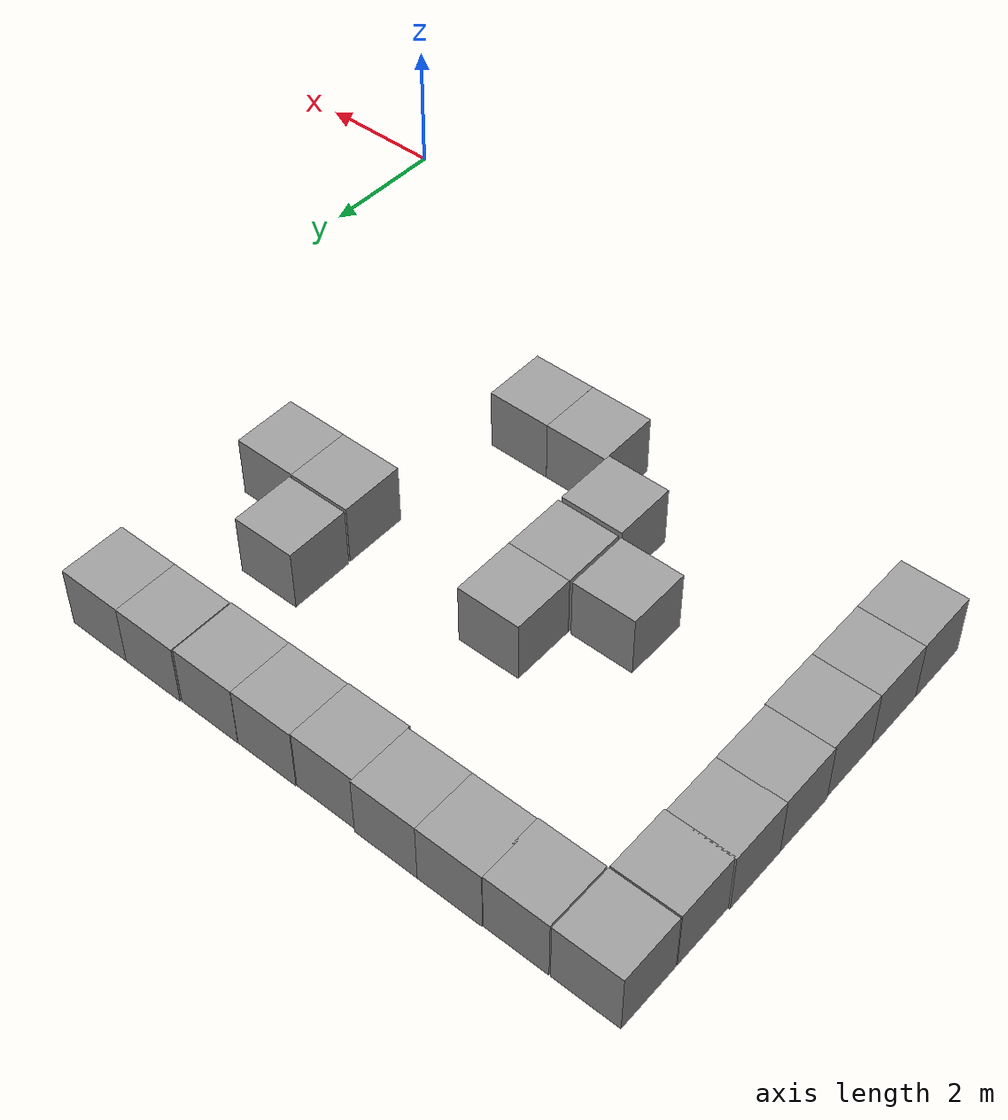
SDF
<sdf version="1.7">
 <model name="maze2.1">
  <link name="link_10">
   <inertial>
    <mass>1</mass>
    <inertia>
     <ixx>0.166667</ixx>
     <ixy>0</ixy>
     <ixz>0</ixz>
     <iyy>0.166667</iyy>
     <iyz>0</iyz>
     <izz>0.166667</izz>
    </inertia>
   </inertial>
   <pose>-11.2599 7.37778 0 0 -0 0</pose>
   <visual name="visual">
    <geometry><box><size>1 1 1</size></box></geometry>
    <material>
     <lighting>1</lighting>
     <script><uri>file://media/materials/scripts/gazebo.material</uri><name>Gazebo/Grey</name></script>
     <shader type="pixel"/>
    </material>
   </visual>
   <collision name="collision">
    <geometry><box><size>1 1 1</size></box></geometry>
    <surface>
     <friction>
      <ode><mu>1</mu><mu2>1</mu2><fdir1>0 0 0</fdir1><slip1>0</slip1><slip2>0</slip2></ode>
      <torsional>
       <coefficient>1</coefficient>
       <patch_radius>0</patch_radius>
       <surface_radius>0</surface_radius>
       <use_patch_radius>1</use_patch_radius>
       <ode><slip>0</slip></ode>
      </torsional>
     </friction>
     <bounce><restitution_coefficient>0</restitution_coefficient><threshold>1e+06</threshold></bounce>
     <contact>
      <collide_without_contact>0</collide_without_contact>
      <collide_without_contact_bitmask>1</collide_without_contact_bitmask>
      <collide_bitmask>1</collide_bitmask>
      <ode>
       <soft_cfm>0</soft_cfm>
       <soft_erp>0.2</soft_erp>
       <kp>1e+13</kp>
       <kd>1</kd>
       <max_vel>0.01</max_vel>
       <min_depth>0</min_depth>
      </ode>
      <bullet>
       <split_impulse>1</split_impulse>
       <split_impulse_penetration_threshold>-0.01</split_impulse_penetration_threshold>
       <soft_cfm>0</soft_cfm>
       <soft_erp>0.2</soft_erp>
       <kp>1e+13</kp>
       <kd>1</kd>
      </bullet>
     </contact>
    </surface>
   </collision>
  </link>
  <link name="link_1_clone_100">
   <inertial>
    <mass>1</mass>
    <inertia>
     <ixx>0.166667</ixx>
     <ixy>0</ixy>
     <ixz>0</ixz>
     <iyy>0.166667</iyy>
     <iyz>0</iyz>
     <izz>0.166667</izz>
    </inertia>
   </inertial>
   <pose>-7.24553 5.3741 0 0 -0 0</pose>
   <visual name="visual">
    <geometry><box><size>1 1 1</size></box></geometry>
    <material>
     <lighting>1</lighting>
     <script><uri>file://media/materials/scripts/gazebo.material</uri><name>Gazebo/Grey</name></script>
     <shader type="pixel"><normal_map>__default__</normal_map></shader>
     <ambient>0.3 0.3 0.3 1</ambient>
     <diffuse>0.7 0.7 0.7 1</diffuse>
     <specular>0.01 0.01 0.01 1</specular>
     <emissive>0 0 0 1</emissive>
    </material>
   </visual>
   <collision name="collision">
    <geometry><box><size>1 1 1</size></box></geometry>
    <surface>
     <friction>
      <ode><mu>1</mu><mu2>1</mu2><fdir1>0 0 0</fdir1><slip1>0</slip1><slip2>0</slip2></ode>
      <torsional>
       <coefficient>1</coefficient>
       <patch_radius>0</patch_radius>
       <surface_radius>0</surface_radius>
       <use_patch_radius>1</use_patch_radius>
       <ode><slip>0</slip></ode>
      </torsional>
     </friction>
     <bounce><restitution_coefficient>0</restitution_coefficient><threshold>1e+06</threshold></bounce>
     <contact>
      <collide_without_contact>0</collide_without_contact>
      <collide_without_contact_bitmask>1</collide_without_contact_bitmask>
      <collide_bitmask>1</collide_bitmask>
      <ode>
       <soft_cfm>0</soft_cfm>
       <soft_erp>0.2</soft_erp>
       <kp>1e+13</kp>
       <kd>1</kd>
       <max_vel>0.01</max_vel>
       <min_depth>0</min_depth>
      </ode>
      <bullet>
       <split_impulse>1</split_impulse>
       <split_impulse_penetration_threshold>-0.01</split_impulse_penetration_threshold>
       <soft_cfm>0</soft_cfm>
       <soft_erp>0.2</soft_erp>
       <kp>1e+13</kp>
       <kd>1</kd>
      </bullet>
     </contact>
    </surface>
   </collision>
  </link>
  <link name="link_1_clone_101">
   <inertial>
    <mass>1</mass>
    <inertia>
     <ixx>0.166667</ixx>
     <ixy>0</ixy>
     <ixz>0</ixz>
     <iyy>0.166667</iyy>
     <iyz>0</iyz>
     <izz>0.166667</izz>
    </inertia>
   </inertial>
   <pose>-7.24563 4.30755 0 0 -0 0</pose>
   <visual name="visual">
    <geometry><box><size>1 1 1</size></box></geometry>
    <material>
     <lighting>1</lighting>
     <script><uri>file://media/materials/scripts/gazebo.material</uri><name>Gazebo/Grey</name></script>
     <shader type="pixel"><normal_map>__default__</normal_map></shader>
     <ambient>0.3 0.3 0.3 1</ambient>
     <diffuse>0.7 0.7 0.7 1</diffuse>
     <specular>0.01 0.01 0.01 1</specular>
     <emissive>0 0 0 1</emissive>
    </material>
   </visual>
   <collision name="collision">
    <geometry><box><size>1 1 1</size></box></geometry>
    <surface>
     <friction>
      <ode><mu>1</mu><mu2>1</mu2><fdir1>0 0 0</fdir1><slip1>0</slip1><slip2>0</slip2></ode>
      <torsional>
       <coefficient>1</coefficient>
       <patch_radius>0</patch_radius>
       <surface_radius>0</surface_radius>
       <use_patch_radius>1</use_patch_radius>
       <ode><slip>0</slip></ode>
      </torsional>
     </friction>
     <bounce><restitution_coefficient>0</restitution_coefficient><threshold>1e+06</threshold></bounce>
     <contact>
      <collide_without_contact>0</collide_without_contact>
      <collide_without_contact_bitmask>1</collide_without_contact_bitmask>
      <collide_bitmask>1</collide_bitmask>
      <ode>
       <soft_cfm>0</soft_cfm>
       <soft_erp>0.2</soft_erp>
       <kp>1e+13</kp>
       <kd>1</kd>
       <max_vel>0.01</max_vel>
       <min_depth>0</min_depth>
      </ode>
      <bullet>
       <split_impulse>1</split_impulse>
       <split_impulse_penetration_threshold>-0.01</split_impulse_penetration_threshold>
       <soft_cfm>0</soft_cfm>
       <soft_erp>0.2</soft_erp>
       <kp>1e+13</kp>
       <kd>1</kd>
      </bullet>
     </contact>
    </surface>
   </collision>
  </link>
  <link name="link_1_clone_105">
   <inertial>
    <mass>1</mass>
    <inertia>
     <ixx>0.166667</ixx>
     <ixy>0</ixy>
     <ixz>0</ixz>
     <iyy>0.166667</iyy>
     <iyz>0</iyz>
     <izz>0.166667</izz>
    </inertia>
   </inertial>
   <pose>-6.24673 3.39615 0 0 -0 0</pose>
   <visual name="visual">
    <geometry><box><size>1 1 1</size></box></geometry>
    <material>
     <lighting>1</lighting>
     <script><uri>file://media/materials/scripts/gazebo.material</uri><name>Gazebo/Grey</name></script>
     <shader type="pixel"><normal_map>__default__</normal_map></shader>
     <ambient>0.3 0.3 0.3 1</ambient>
     <diffuse>0.7 0.7 0.7 1</diffuse>
     <specular>0.01 0.01 0.01 1</specular>
     <emissive>0 0 0 1</emissive>
    </material>
   </visual>
   <collision name="collision">
    <geometry><box><size>1 1 1</size></box></geometry>
    <surface>
     <friction>
      <ode><mu>1</mu><mu2>1</mu2><fdir1>0 0 0</fdir1><slip1>0</slip1><slip2>0</slip2></ode>
      <torsional>
       <coefficient>1</coefficient>
       <patch_radius>0</patch_radius>
       <surface_radius>0</surface_radius>
       <use_patch_radius>1</use_patch_radius>
       <ode><slip>0</slip></ode>
      </torsional>
     </friction>
     <bounce><restitution_coefficient>0</restitution_coefficient><threshold>1e+06</threshold></bounce>
     <contact>
      <collide_without_contact>0</collide_without_contact>
      <collide_without_contact_bitmask>1</collide_without_contact_bitmask>
      <collide_bitmask>1</collide_bitmask>
      <ode>
       <soft_cfm>0</soft_cfm>
       <soft_erp>0.2</soft_erp>
       <kp>1e+13</kp>
       <kd>1</kd>
       <max_vel>0.01</max_vel>
       <min_depth>0</min_depth>
      </ode>
      <bullet>
       <split_impulse>1</split_impulse>
       <split_impulse_penetration_threshold>-0.01</split_impulse_penetration_threshold>
       <soft_cfm>0</soft_cfm>
       <soft_erp>0.2</soft_erp>
       <kp>1e+13</kp>
       <kd>1</kd>
      </bullet>
     </contact>
    </surface>
   </collision>
  </link>
  <link name="link_1_clone_107">
   <inertial>
    <mass>1</mass>
    <inertia>
     <ixx>0.166667</ixx>
     <ixy>0</ixy>
     <ixz>0</ixz>
     <iyy>0.166667</iyy>
     <iyz>0</iyz>
     <izz>0.166667</izz>
    </inertia>
   </inertial>
   <pose>-5.24618 3.39625 0 0 -0 0</pose>
   <visual name="visual">
    <geometry><box><size>1 1 1</size></box></geometry>
    <material>
     <lighting>1</lighting>
     <script><uri>file://media/materials/scripts/gazebo.material</uri><name>Gazebo/Grey</name></script>
     <shader type="pixel"><normal_map>__default__</normal_map></shader>
     <ambient>0.3 0.3 0.3 1</ambient>
     <diffuse>0.7 0.7 0.7 1</diffuse>
     <specular>0.01 0.01 0.01 1</specular>
     <emissive>0 0 0 1</emissive>
    </material>
   </visual>
   <collision name="collision">
    <geometry><box><size>1 1 1</size></box></geometry>
    <surface>
     <friction>
      <ode><mu>1</mu><mu2>1</mu2><fdir1>0 0 0</fdir1><slip1>0</slip1><slip2>0</slip2></ode>
      <torsional>
       <coefficient>1</coefficient>
       <patch_radius>0</patch_radius>
       <surface_radius>0</surface_radius>
       <use_patch_radius>1</use_patch_radius>
       <ode><slip>0</slip></ode>
      </torsional>
     </friction>
     <bounce><restitution_coefficient>0</restitution_coefficient><threshold>1e+06</threshold></bounce>
     <contact>
      <collide_without_contact>0</collide_without_contact>
      <collide_without_contact_bitmask>1</collide_without_contact_bitmask>
      <collide_bitmask>1</collide_bitmask>
      <ode>
       <soft_cfm>0</soft_cfm>
       <soft_erp>0.2</soft_erp>
       <kp>1e+13</kp>
       <kd>1</kd>
       <max_vel>0.01</max_vel>
       <min_depth>0</min_depth>
      </ode>
      <bullet>
       <split_impulse>1</split_impulse>
       <split_impulse_penetration_threshold>-0.01</split_impulse_penetration_threshold>
       <soft_cfm>0</soft_cfm>
       <soft_erp>0.2</soft_erp>
       <kp>1e+13</kp>
       <kd>1</kd>
      </bullet>
     </contact>
    </surface>
   </collision>
  </link>
  <link name="link_1_clone_11">
   <inertial>
    <mass>1</mass>
    <inertia>
     <ixx>0.166667</ixx>
     <ixy>0</ixy>
     <ixz>0</ixz>
     <iyy>0.166667</iyy>
     <iyz>0</iyz>
     <izz>0.166667</izz>
    </inertia>
   </inertial>
   <pose>-3.24618 9.38526 0 0 -0 0</pose>
   <visual name="visual">
    <geometry><box><size>1 1 1</size></box></geometry>
    <material>
     <lighting>1</lighting>
     <script><uri>file://media/materials/scripts/gazebo.material</uri><name>Gazebo/Grey</name></script>
     <shader type="pixel"><normal_map>__default__</normal_map></shader>
     <ambient>0.3 0.3 0.3 1</ambient>
     <diffuse>0.7 0.7 0.7 1</diffuse>
     <specular>0.01 0.01 0.01 1</specular>
     <emissive>0 0 0 1</emissive>
    </material>
   </visual>
   <collision name="collision">
    <geometry><box><size>1 1 1</size></box></geometry>
    <surface>
     <friction>
      <ode><mu>1</mu><mu2>1</mu2><fdir1>0 0 0</fdir1><slip1>0</slip1><slip2>0</slip2></ode>
      <torsional>
       <coefficient>1</coefficient>
       <patch_radius>0</patch_radius>
       <surface_radius>0</surface_radius>
       <use_patch_radius>1</use_patch_radius>
       <ode><slip>0</slip></ode>
      </torsional>
     </friction>
     <bounce><restitution_coefficient>0</restitution_coefficient><threshold>1e+06</threshold></bounce>
     <contact>
      <collide_without_contact>0</collide_without_contact>
      <collide_without_contact_bitmask>1</collide_without_contact_bitmask>
      <collide_bitmask>1</collide_bitmask>
      <ode>
       <soft_cfm>0</soft_cfm>
       <soft_erp>0.2</soft_erp>
       <kp>1e+13</kp>
       <kd>1</kd>
       <max_vel>0.01</max_vel>
       <min_depth>0</min_depth>
      </ode>
      <bullet>
       <split_impulse>1</split_impulse>
       <split_impulse_penetration_threshold>-0.01</split_impulse_penetration_threshold>
       <soft_cfm>0</soft_cfm>
       <soft_erp>0.2</soft_erp>
       <kp>1e+13</kp>
       <kd>1</kd>
      </bullet>
     </contact>
    </surface>
   </collision>
  </link>
  <link name="link_1_clone_12">
   <inertial>
    <mass>1</mass>
    <inertia>
     <ixx>0.166667</ixx>
     <ixy>0</ixy>
     <ixz>0</ixz>
     <iyy>0.166667</iyy>
     <iyz>0</iyz>
     <izz>0.166667</izz>
    </inertia>
   </inertial>
   <pose>-4.24618 9.38526 0 0 -0 0</pose>
   <visual name="visual">
    <geometry><box><size>1 1 1</size></box></geometry>
    <material>
     <lighting>1</lighting>
     <script><uri>file://media/materials/scripts/gazebo.material</uri><name>Gazebo/Grey</name></script>
     <shader type="pixel"><normal_map>__default__</normal_map></shader>
     <ambient>0.3 0.3 0.3 1</ambient>
     <diffuse>0.7 0.7 0.7 1</diffuse>
     <specular>0.01 0.01 0.01 1</specular>
     <emissive>0 0 0 1</emissive>
    </material>
   </visual>
   <collision name="collision">
    <geometry><box><size>1 1 1</size></box></geometry>
    <surface>
     <friction>
      <ode><mu>1</mu><mu2>1</mu2><fdir1>0 0 0</fdir1><slip1>0</slip1><slip2>0</slip2></ode>
      <torsional>
       <coefficient>1</coefficient>
       <patch_radius>0</patch_radius>
       <surface_radius>0</surface_radius>
       <use_patch_radius>1</use_patch_radius>
       <ode><slip>0</slip></ode>
      </torsional>
     </friction>
     <bounce><restitution_coefficient>0</restitution_coefficient><threshold>1e+06</threshold></bounce>
     <contact>
      <collide_without_contact>0</collide_without_contact>
      <collide_without_contact_bitmask>1</collide_without_contact_bitmask>
      <collide_bitmask>1</collide_bitmask>
      <ode>
       <soft_cfm>0</soft_cfm>
       <soft_erp>0.2</soft_erp>
       <kp>1e+13</kp>
       <kd>1</kd>
       <max_vel>0.01</max_vel>
       <min_depth>0</min_depth>
      </ode>
      <bullet>
       <split_impulse>1</split_impulse>
       <split_impulse_penetration_threshold>-0.01</split_impulse_penetration_threshold>
       <soft_cfm>0</soft_cfm>
       <soft_erp>0.2</soft_erp>
       <kp>1e+13</kp>
       <kd>1</kd>
      </bullet>
     </contact>
    </surface>
   </collision>
  </link>
  <link name="link_1_clone_13">
   <inertial>
    <mass>1</mass>
    <inertia>
     <ixx>0.166667</ixx>
     <ixy>0</ixy>
     <ixz>0</ixz>
     <iyy>0.166667</iyy>
     <iyz>0</iyz>
     <izz>0.166667</izz>
    </inertia>
   </inertial>
   <pose>-5.26156 9.3701 0 0 -0 0</pose>
   <visual name="visual">
    <geometry><box><size>1 1 1</size></box></geometry>
    <material>
     <lighting>1</lighting>
     <script><uri>file://media/materials/scripts/gazebo.material</uri><name>Gazebo/Grey</name></script>
     <shader type="pixel"><normal_map>__default__</normal_map></shader>
     <ambient>0.3 0.3 0.3 1</ambient>
     <diffuse>0.7 0.7 0.7 1</diffuse>
     <specular>0.01 0.01 0.01 1</specular>
     <emissive>0 0 0 1</emissive>
    </material>
   </visual>
   <collision name="collision">
    <geometry><box><size>1 1 1</size></box></geometry>
    <surface>
     <friction>
      <ode><mu>1</mu><mu2>1</mu2><fdir1>0 0 0</fdir1><slip1>0</slip1><slip2>0</slip2></ode>
      <torsional>
       <coefficient>1</coefficient>
       <patch_radius>0</patch_radius>
       <surface_radius>0</surface_radius>
       <use_patch_radius>1</use_patch_radius>
       <ode><slip>0</slip></ode>
      </torsional>
     </friction>
     <bounce><restitution_coefficient>0</restitution_coefficient><threshold>1e+06</threshold></bounce>
     <contact>
      <collide_without_contact>0</collide_without_contact>
      <collide_without_contact_bitmask>1</collide_without_contact_bitmask>
      <collide_bitmask>1</collide_bitmask>
      <ode>
       <soft_cfm>0</soft_cfm>
       <soft_erp>0.2</soft_erp>
       <kp>1e+13</kp>
       <kd>1</kd>
       <max_vel>0.01</max_vel>
       <min_depth>0</min_depth>
      </ode>
      <bullet>
       <split_impulse>1</split_impulse>
       <split_impulse_penetration_threshold>-0.01</split_impulse_penetration_threshold>
       <soft_cfm>0</soft_cfm>
       <soft_erp>0.2</soft_erp>
       <kp>1e+13</kp>
       <kd>1</kd>
      </bullet>
     </contact>
    </surface>
   </collision>
  </link>
  <link name="link_1_clone_14">
   <inertial>
    <mass>1</mass>
    <inertia>
     <ixx>0.166667</ixx>
     <ixy>0</ixy>
     <ixz>0</ixz>
     <iyy>0.166667</iyy>
     <iyz>0</iyz>
     <izz>0.166667</izz>
    </inertia>
   </inertial>
   <pose>-6.25883 9.36603 0 0 -0 0</pose>
   <visual name="visual">
    <geometry><box><size>1 1 1</size></box></geometry>
    <material>
     <lighting>1</lighting>
     <script><uri>file://media/materials/scripts/gazebo.material</uri><name>Gazebo/Grey</name></script>
     <shader type="pixel"><normal_map>__default__</normal_map></shader>
     <ambient>0.3 0.3 0.3 1</ambient>
     <diffuse>0.7 0.7 0.7 1</diffuse>
     <specular>0.01 0.01 0.01 1</specular>
     <emissive>0 0 0 1</emissive>
    </material>
   </visual>
   <collision name="collision">
    <geometry><box><size>1 1 1</size></box></geometry>
    <surface>
     <friction>
      <ode><mu>1</mu><mu2>1</mu2><fdir1>0 0 0</fdir1><slip1>0</slip1><slip2>0</slip2></ode>
      <torsional>
       <coefficient>1</coefficient>
       <patch_radius>0</patch_radius>
       <surface_radius>0</surface_radius>
       <use_patch_radius>1</use_patch_radius>
       <ode><slip>0</slip></ode>
      </torsional>
     </friction>
     <bounce><restitution_coefficient>0</restitution_coefficient><threshold>1e+06</threshold></bounce>
     <contact>
      <collide_without_contact>0</collide_without_contact>
      <collide_without_contact_bitmask>1</collide_without_contact_bitmask>
      <collide_bitmask>1</collide_bitmask>
      <ode>
       <soft_cfm>0</soft_cfm>
       <soft_erp>0.2</soft_erp>
       <kp>1e+13</kp>
       <kd>1</kd>
       <max_vel>0.01</max_vel>
       <min_depth>0</min_depth>
      </ode>
      <bullet>
       <split_impulse>1</split_impulse>
       <split_impulse_penetration_threshold>-0.01</split_impulse_penetration_threshold>
       <soft_cfm>0</soft_cfm>
       <soft_erp>0.2</soft_erp>
       <kp>1e+13</kp>
       <kd>1</kd>
      </bullet>
     </contact>
    </surface>
   </collision>
  </link>
  <link name="link_1_clone_15">
   <inertial>
    <mass>1</mass>
    <inertia>
     <ixx>0.166667</ixx>
     <ixy>0</ixy>
     <ixz>0</ixz>
     <iyy>0.166667</iyy>
     <iyz>0</iyz>
     <izz>0.166667</izz>
    </inertia>
   </inertial>
   <pose>-7.24618 9.35465 0 0 -0 0</pose>
   <visual name="visual">
    <geometry><box><size>1 1 1</size></box></geometry>
    <material>
     <lighting>1</lighting>
     <script><uri>file://media/materials/scripts/gazebo.material</uri><name>Gazebo/Grey</name></script>
     <shader type="pixel"><normal_map>__default__</normal_map></shader>
     <ambient>0.3 0.3 0.3 1</ambient>
     <diffuse>0.7 0.7 0.7 1</diffuse>
     <specular>0.01 0.01 0.01 1</specular>
     <emissive>0 0 0 1</emissive>
    </material>
   </visual>
   <collision name="collision">
    <geometry><box><size>1 1 1</size></box></geometry>
    <surface>
     <friction>
      <ode><mu>1</mu><mu2>1</mu2><fdir1>0 0 0</fdir1><slip1>0</slip1><slip2>0</slip2></ode>
      <torsional>
       <coefficient>1</coefficient>
       <patch_radius>0</patch_radius>
       <surface_radius>0</surface_radius>
       <use_patch_radius>1</use_patch_radius>
       <ode><slip>0</slip></ode>
      </torsional>
     </friction>
     <bounce><restitution_coefficient>0</restitution_coefficient><threshold>1e+06</threshold></bounce>
     <contact>
      <collide_without_contact>0</collide_without_contact>
      <collide_without_contact_bitmask>1</collide_without_contact_bitmask>
      <collide_bitmask>1</collide_bitmask>
      <ode>
       <soft_cfm>0</soft_cfm>
       <soft_erp>0.2</soft_erp>
       <kp>1e+13</kp>
       <kd>1</kd>
       <max_vel>0.01</max_vel>
       <min_depth>0</min_depth>
      </ode>
      <bullet>
       <split_impulse>1</split_impulse>
       <split_impulse_penetration_threshold>-0.01</split_impulse_penetration_threshold>
       <soft_cfm>0</soft_cfm>
       <soft_erp>0.2</soft_erp>
       <kp>1e+13</kp>
       <kd>1</kd>
      </bullet>
     </contact>
    </surface>
   </collision>
  </link>
  <link name="link_1_clone_16">
   <inertial>
    <mass>1</mass>
    <inertia>
     <ixx>0.166667</ixx>
     <ixy>0</ixy>
     <ixz>0</ixz>
     <iyy>0.166667</iyy>
     <iyz>0</iyz>
     <izz>0.166667</izz>
    </inertia>
   </inertial>
   <pose>-8.24618 9.38541 0 0 -0 0</pose>
   <visual name="visual">
    <geometry><box><size>1 1 1</size></box></geometry>
    <material>
     <lighting>1</lighting>
     <script><uri>file://media/materials/scripts/gazebo.material</uri><name>Gazebo/Grey</name></script>
     <shader type="pixel"><normal_map>__default__</normal_map></shader>
     <ambient>0.3 0.3 0.3 1</ambient>
     <diffuse>0.7 0.7 0.7 1</diffuse>
     <specular>0.01 0.01 0.01 1</specular>
     <emissive>0 0 0 1</emissive>
    </material>
   </visual>
   <collision name="collision">
    <geometry><box><size>1 1 1</size></box></geometry>
    <surface>
     <friction>
      <ode><mu>1</mu><mu2>1</mu2><fdir1>0 0 0</fdir1><slip1>0</slip1><slip2>0</slip2></ode>
      <torsional>
       <coefficient>1</coefficient>
       <patch_radius>0</patch_radius>
       <surface_radius>0</surface_radius>
       <use_patch_radius>1</use_patch_radius>
       <ode><slip>0</slip></ode>
      </torsional>
     </friction>
     <bounce><restitution_coefficient>0</restitution_coefficient><threshold>1e+06</threshold></bounce>
     <contact>
      <collide_without_contact>0</collide_without_contact>
      <collide_without_contact_bitmask>1</collide_without_contact_bitmask>
      <collide_bitmask>1</collide_bitmask>
      <ode>
       <soft_cfm>0</soft_cfm>
       <soft_erp>0.2</soft_erp>
       <kp>1e+13</kp>
       <kd>1</kd>
       <max_vel>0.01</max_vel>
       <min_depth>0</min_depth>
      </ode>
      <bullet>
       <split_impulse>1</split_impulse>
       <split_impulse_penetration_threshold>-0.01</split_impulse_penetration_threshold>
       <soft_cfm>0</soft_cfm>
       <soft_erp>0.2</soft_erp>
       <kp>1e+13</kp>
       <kd>1</kd>
      </bullet>
     </contact>
    </surface>
   </collision>
  </link>
  <link name="link_1_clone_17">
   <inertial>
    <mass>1</mass>
    <inertia>
     <ixx>0.166667</ixx>
     <ixy>0</ixy>
     <ixz>0</ixz>
     <iyy>0.166667</iyy>
     <iyz>0</iyz>
     <izz>0.166667</izz>
    </inertia>
   </inertial>
   <pose>-9.24618 9.38541 0 0 -0 0</pose>
   <visual name="visual">
    <geometry><box><size>1 1 1</size></box></geometry>
    <material>
     <lighting>1</lighting>
     <script><uri>file://media/materials/scripts/gazebo.material</uri><name>Gazebo/Grey</name></script>
     <shader type="pixel"><normal_map>__default__</normal_map></shader>
     <ambient>0.3 0.3 0.3 1</ambient>
     <diffuse>0.7 0.7 0.7 1</diffuse>
     <specular>0.01 0.01 0.01 1</specular>
     <emissive>0 0 0 1</emissive>
    </material>
   </visual>
   <collision name="collision">
    <geometry><box><size>1 1 1</size></box></geometry>
    <surface>
     <friction>
      <ode><mu>1</mu><mu2>1</mu2><fdir1>0 0 0</fdir1><slip1>0</slip1><slip2>0</slip2></ode>
      <torsional>
       <coefficient>1</coefficient>
       <patch_radius>0</patch_radius>
       <surface_radius>0</surface_radius>
       <use_patch_radius>1</use_patch_radius>
       <ode><slip>0</slip></ode>
      </torsional>
     </friction>
     <bounce><restitution_coefficient>0</restitution_coefficient><threshold>1e+06</threshold></bounce>
     <contact>
      <collide_without_contact>0</collide_without_contact>
      <collide_without_contact_bitmask>1</collide_without_contact_bitmask>
      <collide_bitmask>1</collide_bitmask>
      <ode>
       <soft_cfm>0</soft_cfm>
       <soft_erp>0.2</soft_erp>
       <kp>1e+13</kp>
       <kd>1</kd>
       <max_vel>0.01</max_vel>
       <min_depth>0</min_depth>
      </ode>
      <bullet>
       <split_impulse>1</split_impulse>
       <split_impulse_penetration_threshold>-0.01</split_impulse_penetration_threshold>
       <soft_cfm>0</soft_cfm>
       <soft_erp>0.2</soft_erp>
       <kp>1e+13</kp>
       <kd>1</kd>
      </bullet>
     </contact>
    </surface>
   </collision>
  </link>
  <link name="link_1_clone_18">
   <inertial>
    <mass>1</mass>
    <inertia>
     <ixx>0.166667</ixx>
     <ixy>0</ixy>
     <ixz>0</ixz>
     <iyy>0.166667</iyy>
     <iyz>0</iyz>
     <izz>0.166667</izz>
    </inertia>
   </inertial>
   <pose>-11.2571 6.3901 0 0 -0 0</pose>
   <visual name="visual">
    <geometry><box><size>1 1 1</size></box></geometry>
    <material>
     <lighting>1</lighting>
     <script><uri>file://media/materials/scripts/gazebo.material</uri><name>Gazebo/Grey</name></script>
     <shader type="pixel"><normal_map>__default__</normal_map></shader>
     <ambient>0.3 0.3 0.3 1</ambient>
     <diffuse>0.7 0.7 0.7 1</diffuse>
     <specular>0.01 0.01 0.01 1</specular>
     <emissive>0 0 0 1</emissive>
    </material>
   </visual>
   <collision name="collision">
    <geometry><box><size>1 1 1</size></box></geometry>
    <surface>
     <friction>
      <ode><mu>1</mu><mu2>1</mu2><fdir1>0 0 0</fdir1><slip1>0</slip1><slip2>0</slip2></ode>
      <torsional>
       <coefficient>1</coefficient>
       <patch_radius>0</patch_radius>
       <surface_radius>0</surface_radius>
       <use_patch_radius>1</use_patch_radius>
       <ode><slip>0</slip></ode>
      </torsional>
     </friction>
     <bounce><restitution_coefficient>0</restitution_coefficient><threshold>1e+06</threshold></bounce>
     <contact>
      <collide_without_contact>0</collide_without_contact>
      <collide_without_contact_bitmask>1</collide_without_contact_bitmask>
      <collide_bitmask>1</collide_bitmask>
      <ode>
       <soft_cfm>0</soft_cfm>
       <soft_erp>0.2</soft_erp>
       <kp>1e+13</kp>
       <kd>1</kd>
       <max_vel>0.01</max_vel>
       <min_depth>0</min_depth>
      </ode>
      <bullet>
       <split_impulse>1</split_impulse>
       <split_impulse_penetration_threshold>-0.01</split_impulse_penetration_threshold>
       <soft_cfm>0</soft_cfm>
       <soft_erp>0.2</soft_erp>
       <kp>1e+13</kp>
       <kd>1</kd>
      </bullet>
     </contact>
    </surface>
   </collision>
  </link>
  <link name="link_1_clone_19">
   <inertial>
    <mass>1</mass>
    <inertia>
     <ixx>0.166667</ixx>
     <ixy>0</ixy>
     <ixz>0</ixz>
     <iyy>0.166667</iyy>
     <iyz>0</iyz>
     <izz>0.166667</izz>
    </inertia>
   </inertial>
   <pose>-11.2416 5.3901 0 0 -0 0</pose>
   <visual name="visual">
    <geometry><box><size>1 1 1</size></box></geometry>
    <material>
     <lighting>1</lighting>
     <script><uri>file://media/materials/scripts/gazebo.material</uri><name>Gazebo/Grey</name></script>
     <shader type="pixel"><normal_map>__default__</normal_map></shader>
     <ambient>0.3 0.3 0.3 1</ambient>
     <diffuse>0.7 0.7 0.7 1</diffuse>
     <specular>0.01 0.01 0.01 1</specular>
     <emissive>0 0 0 1</emissive>
    </material>
   </visual>
   <collision name="collision">
    <geometry><box><size>1 1 1</size></box></geometry>
    <surface>
     <friction>
      <ode><mu>1</mu><mu2>1</mu2><fdir1>0 0 0</fdir1><slip1>0</slip1><slip2>0</slip2></ode>
      <torsional>
       <coefficient>1</coefficient>
       <patch_radius>0</patch_radius>
       <surface_radius>0</surface_radius>
       <use_patch_radius>1</use_patch_radius>
       <ode><slip>0</slip></ode>
      </torsional>
     </friction>
     <bounce><restitution_coefficient>0</restitution_coefficient><threshold>1e+06</threshold></bounce>
     <contact>
      <collide_without_contact>0</collide_without_contact>
      <collide_without_contact_bitmask>1</collide_without_contact_bitmask>
      <collide_bitmask>1</collide_bitmask>
      <ode>
       <soft_cfm>0</soft_cfm>
       <soft_erp>0.2</soft_erp>
       <kp>1e+13</kp>
       <kd>1</kd>
       <max_vel>0.01</max_vel>
       <min_depth>0</min_depth>
      </ode>
      <bullet>
       <split_impulse>1</split_impulse>
       <split_impulse_penetration_threshold>-0.01</split_impulse_penetration_threshold>
       <soft_cfm>0</soft_cfm>
       <soft_erp>0.2</soft_erp>
       <kp>1e+13</kp>
       <kd>1</kd>
      </bullet>
     </contact>
    </surface>
   </collision>
  </link>
  <link name="link_1_clone_20">
   <inertial>
    <mass>1</mass>
    <inertia>
     <ixx>0.166667</ixx>
     <ixy>0</ixy>
     <ixz>0</ixz>
     <iyy>0.166667</iyy>
     <iyz>0</iyz>
     <izz>0.166667</izz>
    </inertia>
   </inertial>
   <pose>-11.2415 4.3901 0 0 -0 0</pose>
   <visual name="visual">
    <geometry><box><size>1 1 1</size></box></geometry>
    <material>
     <lighting>1</lighting>
     <script><uri>file://media/materials/scripts/gazebo.material</uri><name>Gazebo/Grey</name></script>
     <shader type="pixel"><normal_map>__default__</normal_map></shader>
     <ambient>0.3 0.3 0.3 1</ambient>
     <diffuse>0.7 0.7 0.7 1</diffuse>
     <specular>0.01 0.01 0.01 1</specular>
     <emissive>0 0 0 1</emissive>
    </material>
   </visual>
   <collision name="collision">
    <geometry><box><size>1 1 1</size></box></geometry>
    <surface>
     <friction>
      <ode><mu>1</mu><mu2>1</mu2><fdir1>0 0 0</fdir1><slip1>0</slip1><slip2>0</slip2></ode>
      <torsional>
       <coefficient>1</coefficient>
       <patch_radius>0</patch_radius>
       <surface_radius>0</surface_radius>
       <use_patch_radius>1</use_patch_radius>
       <ode><slip>0</slip></ode>
      </torsional>
     </friction>
     <bounce><restitution_coefficient>0</restitution_coefficient><threshold>1e+06</threshold></bounce>
     <contact>
      <collide_without_contact>0</collide_without_contact>
      <collide_without_contact_bitmask>1</collide_without_contact_bitmask>
      <collide_bitmask>1</collide_bitmask>
      <ode>
       <soft_cfm>0</soft_cfm>
       <soft_erp>0.2</soft_erp>
       <kp>1e+13</kp>
       <kd>1</kd>
       <max_vel>0.01</max_vel>
       <min_depth>0</min_depth>
      </ode>
      <bullet>
       <split_impulse>1</split_impulse>
       <split_impulse_penetration_threshold>-0.01</split_impulse_penetration_threshold>
       <soft_cfm>0</soft_cfm>
       <soft_erp>0.2</soft_erp>
       <kp>1e+13</kp>
       <kd>1</kd>
      </bullet>
     </contact>
    </surface>
   </collision>
  </link>
  <link name="link_1_clone_21">
   <inertial>
    <mass>1</mass>
    <inertia>
     <ixx>0.166667</ixx>
     <ixy>0</ixy>
     <ixz>0</ixz>
     <iyy>0.166667</iyy>
     <iyz>0</iyz>
     <izz>0.166667</izz>
    </inertia>
   </inertial>
   <pose>-11.2416 3.38996 0 0 -0 0</pose>
   <visual name="visual">
    <geometry><box><size>1 1 1</size></box></geometry>
    <material>
     <lighting>1</lighting>
     <script><uri>file://media/materials/scripts/gazebo.material</uri><name>Gazebo/Grey</name></script>
     <shader type="pixel"><normal_map>__default__</normal_map></shader>
     <ambient>0.3 0.3 0.3 1</ambient>
     <diffuse>0.7 0.7 0.7 1</diffuse>
     <specular>0.01 0.01 0.01 1</specular>
     <emissive>0 0 0 1</emissive>
    </material>
   </visual>
   <collision name="collision">
    <geometry><box><size>1 1 1</size></box></geometry>
    <surface>
     <friction>
      <ode><mu>1</mu><mu2>1</mu2><fdir1>0 0 0</fdir1><slip1>0</slip1><slip2>0</slip2></ode>
      <torsional>
       <coefficient>1</coefficient>
       <patch_radius>0</patch_radius>
       <surface_radius>0</surface_radius>
       <use_patch_radius>1</use_patch_radius>
       <ode><slip>0</slip></ode>
      </torsional>
     </friction>
     <bounce><restitution_coefficient>0</restitution_coefficient><threshold>1e+06</threshold></bounce>
     <contact>
      <collide_without_contact>0</collide_without_contact>
      <collide_without_contact_bitmask>1</collide_without_contact_bitmask>
      <collide_bitmask>1</collide_bitmask>
      <ode>
       <soft_cfm>0</soft_cfm>
       <soft_erp>0.2</soft_erp>
       <kp>1e+13</kp>
       <kd>1</kd>
       <max_vel>0.01</max_vel>
       <min_depth>0</min_depth>
      </ode>
      <bullet>
       <split_impulse>1</split_impulse>
       <split_impulse_penetration_threshold>-0.01</split_impulse_penetration_threshold>
       <soft_cfm>0</soft_cfm>
       <soft_erp>0.2</soft_erp>
       <kp>1e+13</kp>
       <kd>1</kd>
      </bullet>
     </contact>
    </surface>
   </collision>
  </link>
  <link name="link_1_clone_94">
   <inertial>
    <mass>1</mass>
    <inertia>
     <ixx>0.166667</ixx>
     <ixy>0</ixy>
     <ixz>0</ixz>
     <iyy>0.166667</iyy>
     <iyz>0</iyz>
     <izz>0.166667</izz>
    </inertia>
   </inertial>
   <pose>-3.25139 6.30037 0 0 -0 0</pose>
   <visual name="visual">
    <geometry><box><size>1 1 1</size></box></geometry>
    <material>
     <lighting>1</lighting>
     <script><uri>file://media/materials/scripts/gazebo.material</uri><name>Gazebo/Grey</name></script>
     <shader type="pixel"><normal_map>__default__</normal_map></shader>
     <ambient>0.3 0.3 0.3 1</ambient>
     <diffuse>0.7 0.7 0.7 1</diffuse>
     <specular>0.01 0.01 0.01 1</specular>
     <emissive>0 0 0 1</emissive>
    </material>
   </visual>
   <collision name="collision">
    <geometry><box><size>1 1 1</size></box></geometry>
    <surface>
     <friction>
      <ode><mu>1</mu><mu2>1</mu2><fdir1>0 0 0</fdir1><slip1>0</slip1><slip2>0</slip2></ode>
      <torsional>
       <coefficient>1</coefficient>
       <patch_radius>0</patch_radius>
       <surface_radius>0</surface_radius>
       <use_patch_radius>1</use_patch_radius>
       <ode><slip>0</slip></ode>
      </torsional>
     </friction>
     <bounce><restitution_coefficient>0</restitution_coefficient><threshold>1e+06</threshold></bounce>
     <contact>
      <collide_without_contact>0</collide_without_contact>
      <collide_without_contact_bitmask>1</collide_without_contact_bitmask>
      <collide_bitmask>1</collide_bitmask>
      <ode>
       <soft_cfm>0</soft_cfm>
       <soft_erp>0.2</soft_erp>
       <kp>1e+13</kp>
       <kd>1</kd>
       <max_vel>0.01</max_vel>
       <min_depth>0</min_depth>
      </ode>
      <bullet>
       <split_impulse>1</split_impulse>
       <split_impulse_penetration_threshold>-0.01</split_impulse_penetration_threshold>
       <soft_cfm>0</soft_cfm>
       <soft_erp>0.2</soft_erp>
       <kp>1e+13</kp>
       <kd>1</kd>
      </bullet>
     </contact>
    </surface>
   </collision>
  </link>
  <link name="link_1_clone_96">
   <inertial>
    <mass>1</mass>
    <inertia>
     <ixx>0.166667</ixx>
     <ixy>0</ixy>
     <ixz>0</ixz>
     <iyy>0.166667</iyy>
     <iyz>0</iyz>
     <izz>0.166667</izz>
    </inertia>
   </inertial>
   <pose>-4.2614 7.34184 0 0 -0 0</pose>
   <visual name="visual">
    <geometry><box><size>1 1 1</size></box></geometry>
    <material>
     <lighting>1</lighting>
     <script><uri>file://media/materials/scripts/gazebo.material</uri><name>Gazebo/Grey</name></script>
     <shader type="pixel"><normal_map>__default__</normal_map></shader>
     <ambient>0.3 0.3 0.3 1</ambient>
     <diffuse>0.7 0.7 0.7 1</diffuse>
     <specular>0.01 0.01 0.01 1</specular>
     <emissive>0 0 0 1</emissive>
    </material>
   </visual>
   <collision name="collision">
    <geometry><box><size>1 1 1</size></box></geometry>
    <surface>
     <friction>
      <ode><mu>1</mu><mu2>1</mu2><fdir1>0 0 0</fdir1><slip1>0</slip1><slip2>0</slip2></ode>
      <torsional>
       <coefficient>1</coefficient>
       <patch_radius>0</patch_radius>
       <surface_radius>0</surface_radius>
       <use_patch_radius>1</use_patch_radius>
       <ode><slip>0</slip></ode>
      </torsional>
     </friction>
     <bounce><restitution_coefficient>0</restitution_coefficient><threshold>1e+06</threshold></bounce>
     <contact>
      <collide_without_contact>0</collide_without_contact>
      <collide_without_contact_bitmask>1</collide_without_contact_bitmask>
      <collide_bitmask>1</collide_bitmask>
      <ode>
       <soft_cfm>0</soft_cfm>
       <soft_erp>0.2</soft_erp>
       <kp>1e+13</kp>
       <kd>1</kd>
       <max_vel>0.01</max_vel>
       <min_depth>0</min_depth>
      </ode>
      <bullet>
       <split_impulse>1</split_impulse>
       <split_impulse_penetration_threshold>-0.01</split_impulse_penetration_threshold>
       <soft_cfm>0</soft_cfm>
       <soft_erp>0.2</soft_erp>
       <kp>1e+13</kp>
       <kd>1</kd>
      </bullet>
     </contact>
    </surface>
   </collision>
  </link>
  <link name="link_1_clone_97">
   <inertial>
    <mass>1</mass>
    <inertia>
     <ixx>0.166667</ixx>
     <ixy>0</ixy>
     <ixz>0</ixz>
     <iyy>0.166667</iyy>
     <iyz>0</iyz>
     <izz>0.166667</izz>
    </inertia>
   </inertial>
   <pose>-4.25017 6.30255 0 0 -0 0</pose>
   <visual name="visual">
    <geometry><box><size>1 1 1</size></box></geometry>
    <material>
     <lighting>1</lighting>
     <script><uri>file://media/materials/scripts/gazebo.material</uri><name>Gazebo/Grey</name></script>
     <shader type="pixel"><normal_map>__default__</normal_map></shader>
     <ambient>0.3 0.3 0.3 1</ambient>
     <diffuse>0.7 0.7 0.7 1</diffuse>
     <specular>0.01 0.01 0.01 1</specular>
     <emissive>0 0 0 1</emissive>
    </material>
   </visual>
   <collision name="collision">
    <geometry><box><size>1 1 1</size></box></geometry>
    <surface>
     <friction>
      <ode><mu>1</mu><mu2>1</mu2><fdir1>0 0 0</fdir1><slip1>0</slip1><slip2>0</slip2></ode>
      <torsional>
       <coefficient>1</coefficient>
       <patch_radius>0</patch_radius>
       <surface_radius>0</surface_radius>
       <use_patch_radius>1</use_patch_radius>
       <ode><slip>0</slip></ode>
      </torsional>
     </friction>
     <bounce><restitution_coefficient>0</restitution_coefficient><threshold>1e+06</threshold></bounce>
     <contact>
      <collide_without_contact>0</collide_without_contact>
      <collide_without_contact_bitmask>1</collide_without_contact_bitmask>
      <collide_bitmask>1</collide_bitmask>
      <ode>
       <soft_cfm>0</soft_cfm>
       <soft_erp>0.2</soft_erp>
       <kp>1e+13</kp>
       <kd>1</kd>
       <max_vel>0.01</max_vel>
       <min_depth>0</min_depth>
      </ode>
      <bullet>
       <split_impulse>1</split_impulse>
       <split_impulse_penetration_threshold>-0.01</split_impulse_penetration_threshold>
       <soft_cfm>0</soft_cfm>
       <soft_erp>0.2</soft_erp>
       <kp>1e+13</kp>
       <kd>1</kd>
      </bullet>
     </contact>
    </surface>
   </collision>
  </link>
  <link name="link_1_clone_98">
   <inertial>
    <mass>1</mass>
    <inertia>
     <ixx>0.166667</ixx>
     <ixy>0</ixy>
     <ixz>0</ixz>
     <iyy>0.166667</iyy>
     <iyz>0</iyz>
     <izz>0.166667</izz>
    </inertia>
   </inertial>
   <pose>-7.24553 6.37431 0 0 -0 0</pose>
   <visual name="visual">
    <geometry><box><size>1 1 1</size></box></geometry>
    <material>
     <lighting>1</lighting>
     <script><uri>file://media/materials/scripts/gazebo.material</uri><name>Gazebo/Grey</name></script>
     <shader type="pixel"><normal_map>__default__</normal_map></shader>
     <ambient>0.3 0.3 0.3 1</ambient>
     <diffuse>0.7 0.7 0.7 1</diffuse>
     <specular>0.01 0.01 0.01 1</specular>
     <emissive>0 0 0 1</emissive>
    </material>
   </visual>
   <collision name="collision">
    <geometry><box><size>1 1 1</size></box></geometry>
    <surface>
     <friction>
      <ode><mu>1</mu><mu2>1</mu2><fdir1>0 0 0</fdir1><slip1>0</slip1><slip2>0</slip2></ode>
      <torsional>
       <coefficient>1</coefficient>
       <patch_radius>0</patch_radius>
       <surface_radius>0</surface_radius>
       <use_patch_radius>1</use_patch_radius>
       <ode><slip>0</slip></ode>
      </torsional>
     </friction>
     <bounce><restitution_coefficient>0</restitution_coefficient><threshold>1e+06</threshold></bounce>
     <contact>
      <collide_without_contact>0</collide_without_contact>
      <collide_without_contact_bitmask>1</collide_without_contact_bitmask>
      <collide_bitmask>1</collide_bitmask>
      <ode>
       <soft_cfm>0</soft_cfm>
       <soft_erp>0.2</soft_erp>
       <kp>1e+13</kp>
       <kd>1</kd>
       <max_vel>0.01</max_vel>
       <min_depth>0</min_depth>
      </ode>
      <bullet>
       <split_impulse>1</split_impulse>
       <split_impulse_penetration_threshold>-0.01</split_impulse_penetration_threshold>
       <soft_cfm>0</soft_cfm>
       <soft_erp>0.2</soft_erp>
       <kp>1e+13</kp>
       <kd>1</kd>
      </bullet>
     </contact>
    </surface>
   </collision>
  </link>
  <link name="link_1_clone_99">
   <inertial>
    <mass>1</mass>
    <inertia>
     <ixx>0.166667</ixx>
     <ixy>0</ixy>
     <ixz>0</ixz>
     <iyy>0.166667</iyy>
     <iyz>0</iyz>
     <izz>0.166667</izz>
    </inertia>
   </inertial>
   <pose>-8.28993 5.3741 0 0 -0 0</pose>
   <visual name="visual">
    <geometry><box><size>1 1 1</size></box></geometry>
    <material>
     <lighting>1</lighting>
     <script><uri>file://media/materials/scripts/gazebo.material</uri><name>Gazebo/Grey</name></script>
     <shader type="pixel"><normal_map>__default__</normal_map></shader>
     <ambient>0.3 0.3 0.3 1</ambient>
     <diffuse>0.7 0.7 0.7 1</diffuse>
     <specular>0.01 0.01 0.01 1</specular>
     <emissive>0 0 0 1</emissive>
    </material>
   </visual>
   <collision name="collision">
    <geometry><box><size>1 1 1</size></box></geometry>
    <surface>
     <friction>
      <ode><mu>1</mu><mu2>1</mu2><fdir1>0 0 0</fdir1><slip1>0</slip1><slip2>0</slip2></ode>
      <torsional>
       <coefficient>1</coefficient>
       <patch_radius>0</patch_radius>
       <surface_radius>0</surface_radius>
       <use_patch_radius>1</use_patch_radius>
       <ode><slip>0</slip></ode>
      </torsional>
     </friction>
     <bounce><restitution_coefficient>0</restitution_coefficient><threshold>1e+06</threshold></bounce>
     <contact>
      <collide_without_contact>0</collide_without_contact>
      <collide_without_contact_bitmask>1</collide_without_contact_bitmask>
      <collide_bitmask>1</collide_bitmask>
      <ode>
       <soft_cfm>0</soft_cfm>
       <soft_erp>0.2</soft_erp>
       <kp>1e+13</kp>
       <kd>1</kd>
       <max_vel>0.01</max_vel>
       <min_depth>0</min_depth>
      </ode>
      <bullet>
       <split_impulse>1</split_impulse>
       <split_impulse_penetration_threshold>-0.01</split_impulse_penetration_threshold>
       <soft_cfm>0</soft_cfm>
       <soft_erp>0.2</soft_erp>
       <kp>1e+13</kp>
       <kd>1</kd>
      </bullet>
     </contact>
    </surface>
   </collision>
  </link>
  <link name="link_7">
   <inertial>
    <mass>1</mass>
    <inertia>
     <ixx>0.166667</ixx>
     <ixy>0</ixy>
     <ixz>0</ixz>
     <iyy>0.166667</iyy>
     <iyz>0</iyz>
     <izz>0.166667</izz>
    </inertia>
   </inertial>
   <pose>-10.2158 9.37337 0 0 -0 0</pose>
   <visual name="visual">
    <geometry><box><size>1 1 1</size></box></geometry>
    <material>
     <lighting>1</lighting>
     <script><uri>file://media/materials/scripts/gazebo.material</uri><name>Gazebo/Grey</name></script>
     <shader type="pixel"/>
    </material>
   </visual>
   <collision name="collision">
    <geometry><box><size>1 1 1</size></box></geometry>
    <surface>
     <friction>
      <ode><mu>1</mu><mu2>1</mu2><fdir1>0 0 0</fdir1><slip1>0</slip1><slip2>0</slip2></ode>
      <torsional>
       <coefficient>1</coefficient>
       <patch_radius>0</patch_radius>
       <surface_radius>0</surface_radius>
       <use_patch_radius>1</use_patch_radius>
       <ode><slip>0</slip></ode>
      </torsional>
     </friction>
     <bounce><restitution_coefficient>0</restitution_coefficient><threshold>1e+06</threshold></bounce>
     <contact>
      <collide_without_contact>0</collide_without_contact>
      <collide_without_contact_bitmask>1</collide_without_contact_bitmask>
      <collide_bitmask>1</collide_bitmask>
      <ode>
       <soft_cfm>0</soft_cfm>
       <soft_erp>0.2</soft_erp>
       <kp>1e+13</kp>
       <kd>1</kd>
       <max_vel>0.01</max_vel>
       <min_depth>0</min_depth>
      </ode>
      <bullet>
       <split_impulse>1</split_impulse>
       <split_impulse_penetration_threshold>-0.01</split_impulse_penetration_threshold>
       <soft_cfm>0</soft_cfm>
       <soft_erp>0.2</soft_erp>
       <kp>1e+13</kp>
       <kd>1</kd>
      </bullet>
     </contact>
    </surface>
   </collision>
  </link>
  <link name="link_8">
   <inertial>
    <mass>1</mass>
    <inertia>
     <ixx>0.166667</ixx>
     <ixy>0</ixy>
     <ixz>0</ixz>
     <iyy>0.166667</iyy>
     <iyz>0</iyz>
     <izz>0.166667</izz>
    </inertia>
   </inertial>
   <pose>-11.2366 9.37337 0 0 -0 0</pose>
   <visual name="visual">
    <geometry><box><size>1 1 1</size></box></geometry>
    <material>
     <lighting>1</lighting>
     <script><uri>file://media/materials/scripts/gazebo.material</uri><name>Gazebo/Grey</name></script>
     <shader type="pixel"/>
    </material>
   </visual>
   <collision name="collision">
    <geometry><box><size>1 1 1</size></box></geometry>
    <surface>
     <friction>
      <ode><mu>1</mu><mu2>1</mu2><fdir1>0 0 0</fdir1><slip1>0</slip1><slip2>0</slip2></ode>
      <torsional>
       <coefficient>1</coefficient>
       <patch_radius>0</patch_radius>
       <surface_radius>0</surface_radius>
       <use_patch_radius>1</use_patch_radius>
       <ode><slip>0</slip></ode>
      </torsional>
     </friction>
     <bounce><restitution_coefficient>0</restitution_coefficient><threshold>1e+06</threshold></bounce>
     <contact>
      <collide_without_contact>0</collide_without_contact>
      <collide_without_contact_bitmask>1</collide_without_contact_bitmask>
      <collide_bitmask>1</collide_bitmask>
      <ode>
       <soft_cfm>0</soft_cfm>
       <soft_erp>0.2</soft_erp>
       <kp>1e+13</kp>
       <kd>1</kd>
       <max_vel>0.01</max_vel>
       <min_depth>0</min_depth>
      </ode>
      <bullet>
       <split_impulse>1</split_impulse>
       <split_impulse_penetration_threshold>-0.01</split_impulse_penetration_threshold>
       <soft_cfm>0</soft_cfm>
       <soft_erp>0.2</soft_erp>
       <kp>1e+13</kp>
       <kd>1</kd>
      </bullet>
     </contact>
    </surface>
   </collision>
  </link>
  <link name="link_9">
   <inertial>
    <mass>1</mass>
    <inertia>
     <ixx>0.166667</ixx>
     <ixy>0</ixy>
     <ixz>0</ixz>
     <iyy>0.166667</iyy>
     <iyz>0</iyz>
     <izz>0.166667</izz>
    </inertia>
   </inertial>
   <pose>-11.2366 8.35233 0 0 -0 0</pose>
   <visual name="visual">
    <geometry><box><size>1 1 1</size></box></geometry>
    <material>
     <lighting>1</lighting>
     <script><uri>file://media/materials/scripts/gazebo.material</uri><name>Gazebo/Grey</name></script>
     <shader type="pixel"/>
    </material>
   </visual>
   <collision name="collision">
    <geometry><box><size>1 1 1</size></box></geometry>
    <surface>
     <friction>
      <ode><mu>1</mu><mu2>1</mu2><fdir1>0 0 0</fdir1><slip1>0</slip1><slip2>0</slip2></ode>
      <torsional>
       <coefficient>1</coefficient>
       <patch_radius>0</patch_radius>
       <surface_radius>0</surface_radius>
       <use_patch_radius>1</use_patch_radius>
       <ode><slip>0</slip></ode>
      </torsional>
     </friction>
     <bounce><restitution_coefficient>0</restitution_coefficient><threshold>1e+06</threshold></bounce>
     <contact>
      <collide_without_contact>0</collide_without_contact>
      <collide_without_contact_bitmask>1</collide_without_contact_bitmask>
      <collide_bitmask>1</collide_bitmask>
      <ode>
       <soft_cfm>0</soft_cfm>
       <soft_erp>0.2</soft_erp>
       <kp>1e+13</kp>
       <kd>1</kd>
       <max_vel>0.01</max_vel>
       <min_depth>0</min_depth>
      </ode>
      <bullet>
       <split_impulse>1</split_impulse>
       <split_impulse_penetration_threshold>-0.01</split_impulse_penetration_threshold>
       <soft_cfm>0</soft_cfm>
       <soft_erp>0.2</soft_erp>
       <kp>1e+13</kp>
       <kd>1</kd>
      </bullet>
     </contact>
    </surface>
   </collision>
  </link>
  <static>0</static>
 </model>
</sdf>
